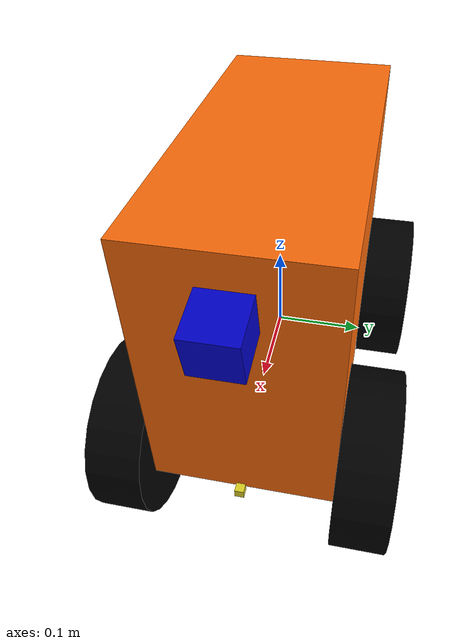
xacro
<?xml version="1.0"?>
<robot name="mybot" xmlns:xacro="http://www.ros.org/wiki/xacro">
        <!-- Put here the robot description -->
	<xacro:property name="PI" value="3.1415926535897931"/>

	<xacro:property name="chassisHeight" value="0.314"/>
	<xacro:property name="chassisLength" value="0.42834"/>
	<xacro:property name="chassisWidth" value="0.2"/>
	<xacro:property name="chassisMass" value="50"/>

	<xacro:property name="casterRadius" value="0.05"/>
	<xacro:property name="casterMass" value="5"/>

	<xacro:property name="wheelWidth" value="0.06"/>
	<xacro:property name="wheelRadius" value="0.1"/>
	<xacro:property name="wheelPos" value="0.15"/>
	<xacro:property name="wheelMass" value="5"/>

	<xacro:property name="cameraSize" value="0.05"/>
	<xacro:property name="cameraMass" value="0.1"/>

	<xacro:property name="laserSize" value="0.01"/>
	<xacro:property name="laserMass" value="0.1"/>

	<xacro:include filename="$(find mybot_description)/urdf/mybot.gazebo" />
	<xacro:include filename="$(find mybot_description)/urdf/materials.xacro" />
	<xacro:include filename="$(find mybot_description)/urdf/macros.xacro" />

	<link name="footprint" />

	<joint name="base_joint" type="fixed">
	  <parent link="footprint"/>
	  <child link="chassis"/>
	</joint>

	<link name='chassis'>
	  <collision>
		<origin xyz="0 0 ${wheelRadius}" rpy="0 0 0"/>
		<geometry>
		  <box size="${chassisLength} ${chassisWidth} ${chassisHeight}"/>
		</geometry>
	  </collision>

	  <visual>
		<origin xyz="0 0 ${wheelRadius}" rpy="0 0 0"/>
		<geometry>
		  <box size="${chassisLength} ${chassisWidth} ${chassisHeight}"/>
		</geometry>
		<material name="orange"/>
	  </visual>

	  <inertial>
		<origin xyz="0 0 ${wheelRadius}" rpy="0 0 0"/>
		<mass value="${chassisMass}"/>
		<box_inertia m="${chassisMass}" x="${chassisLength}" y="${chassisWidth}" z="${chassisHeight}"/>
	  </inertial>
	</link>

	<joint name="fixed" type="fixed">
	  <parent link="chassis"/>
	  <child link="caster_wheel"/>
	</joint>

	<link name="caster_wheel">
	  <collision>
		<origin xyz="${casterRadius-chassisLength/2} 0 -0.05" rpy="0 0 0"/>
		<geometry>
		  <sphere radius="${casterRadius}"/>
		</geometry>
	  </collision>

	  <visual>
			<origin xyz="${casterRadius-chassisLength/2} 0 -0.05" rpy="0 0 0"/>
			<geometry>
			  <sphere radius="${casterRadius}"/>
			</geometry>
			<material name="red"/>
	  </visual>

	  <inertial>
			<origin xyz="${casterRadius-chassisLength/2} 0 -0.05" rpy="0 0 0"/>
			<mass value="${casterMass}"/>
			<sphere_inertia m="${casterMass}" r="${casterRadius}"/>
	  </inertial>
	</link>

	<wheel lr="left_front" tX="1" tY="1"/>
	<wheel lr="right_front" tX="1" tY="-1"/>
	<wheel lr="left_back" tX="-1" tY="1"/>
	<wheel lr="right_back" tX="-1" tY="-1"/>

	<joint name="camera_joint" type="fixed">
    <axis xyz="0 1 0" />
    <origin xyz="${0.03+chassisLength/2} 0 0.2" rpy="0 0.191 0"/>
    <parent link="chassis"/>
    <child link="camera"/>
  </joint>

	<link name="camera">
	  <collision>
	    <origin xyz="0 0 0" rpy="0 0 0"/>
	    <geometry>
	      <box size="${cameraSize} ${cameraSize} ${cameraSize}"/>
	    </geometry>
	  </collision>

	  <visual>
	    <origin xyz="0 0 0" rpy="0 0 0"/>
	    <geometry>
	      <box size="${cameraSize} ${cameraSize} ${cameraSize}"/>
	    </geometry>
	    <material name="blue"/>
	  </visual>

	  <inertial>
	    <mass value="${cameraMass}" />
	    <origin xyz="0 0 0" rpy="0 0 0"/>
	    <box_inertia m="${cameraMass}" x="${cameraSize}" y="${cameraSize}" z="${cameraSize}" />
	  </inertial>
	</link>

	<joint name="Laser_joint" type="fixed">
    <axis xyz="0 1 0" />
    <origin xyz="${0.01+chassisLength/2} 0 -0.05" rpy="0 0 0"/>
    <parent link="chassis"/>
    <child link="laser"/>
  </joint>

  <!-- Hokuyo Laser -->
  <link name="laser">
		<collision>
	    <origin xyz="0 0 0" rpy="0 0 0"/>
	    <geometry>
	      <box size="${laserSize} ${laserSize} ${laserSize}"/>
	    </geometry>
	  </collision>

	  <visual>
	    <origin xyz="0 0 0" rpy="0 0 0"/>
	    <geometry>
	      <box size="${laserSize} ${laserSize} ${laserSize}"/>
	    </geometry>
	    <material name="yellow"/>
	  </visual>

	  <inertial>
	    <mass value="${laserMass}" />
	    <origin xyz="0 0 0" rpy="0 0 0"/>
	    <box_inertia m="${laserSize}" x="${laserSize}" y="${laserSize}" z="${laserSize}" />
	  </inertial>
  </link>

</robot>

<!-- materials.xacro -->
<robot>
	<material name="black">
	  <color rgba="0.0 0.0 0.0 1.0"/>
	</material>

	<material name="blue">
	  <color rgba="0.0 0.0 0.8 1.0"/>
	</material>

	<material name="green">
	  <color rgba="0.0 0.8 0.0 1.0"/>
	</material>

	<material name="grey">
	  <color rgba="0.2 0.2 0.2 1.0"/>
	</material>

	<material name="orange">
	  <color rgba="${255/255} ${108/255} ${10/255} 1.0"/>
	</material>

	<material name="brown">
	  <color rgba="${222/255} ${207/255} ${195/255} 1.0"/>
	</material>

	<material name="red">
	  <color rgba="0.8 0.0 0.0 1.0"/>
	</material>

	<material name="white">
	  <color rgba="1.0 1.0 1.0 1.0"/>
	</material>

</robot>

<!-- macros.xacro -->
<robot>
	<macro name="cylinder_inertia" params="m r h">
	  <inertia  ixx="${m*(3*r*r+h*h)/12}" ixy = "0" ixz = "0"
	    iyy="${m*(3*r*r+h*h)/12}" iyz = "0"
	    izz="${m*r*r/2}"
	  />
	</macro>

	<macro name="box_inertia" params="m x y z">
	  <inertia  ixx="${m*(y*y+z*z)/12}" ixy = "0" ixz = "0"
	    iyy="${m*(x*x+z*z)/12}" iyz = "0"
	    izz="${m*(x*x+z*z)/12}"
	  />
	</macro>

	<macro name="sphere_inertia" params="m r">
	  <inertia  ixx="${2*m*r*r/5}" ixy = "0" ixz = "0"
	    iyy="${2*m*r*r/5}" iyz = "0"
	    izz="${2*m*r*r/5}"
	  />
	</macro>

	<macro name="wheel" params="lr tX tY">

		<link name="${lr}_wheel">
			<collision>
				<origin xyz="0 0 0" rpy="0 ${PI/2} ${PI/2}" />
				<geometry>
				  <cylinder length="${wheelWidth}" radius="${wheelRadius}"/>
				</geometry>
			</collision>

			<visual>
				<origin xyz="0 0 0" rpy="0 ${PI/2} ${PI/2}" />
				<geometry>
				  <cylinder length="${wheelWidth}" radius="${wheelRadius}"/>
				</geometry>
				<material name="black"/>
			</visual>

			<inertial>
				<origin xyz="0 0 0" rpy="0 ${PI/2} ${PI/2}" />
				<mass value="${wheelMass}"/>
				<cylinder_inertia m="${wheelMass}" r="${wheelRadius}" h="${wheelWidth}"/>
			</inertial>
		</link>

		<gazebo reference="${lr}_wheel">
			<mu1 value="1.0"/>
			<mu2 value="1.0"/>
			<kp  value="10000000.0" />
			<kd  value="1.0" />
			<fdir1 value="1 0 0"/>
			<material>Gazebo/Black</material>
		</gazebo>

		<joint name="${lr}_wheel_hinge" type="continuous">
			<parent link="chassis"/>
			<child link="${lr}_wheel"/>
			<origin xyz="${tX*-wheelPos+tX*wheelWidth*1.5+tX*chassisLength/2} ${tY*wheelWidth/2+tY*chassisWidth/2} ${-wheelRadius/2}" rpy="0 0 0" />
			<axis xyz="0 1 0" rpy="0 0 0" />
			<limit effort="100" velocity="100"/>
			<joint_properties damping="0.0" friction="0.0"/>
		</joint>

		<transmission name="${lr}_trans">
			<type>transmission_interface/SimpleTransmission</type>
			<joint name="${lr}_wheel_hinge"/>
			<actuator name="${lr}Motor">
				<hardwareInterface>EffortJointInterface</hardwareInterface>
				<mechanicalReduction>10</mechanicalReduction>
			</actuator>
		</transmission>

	</macro>
</robot>
